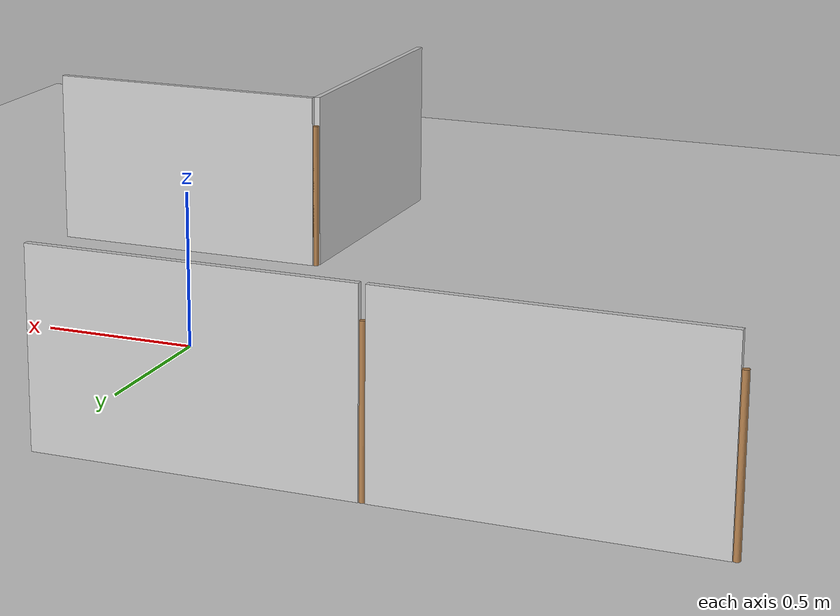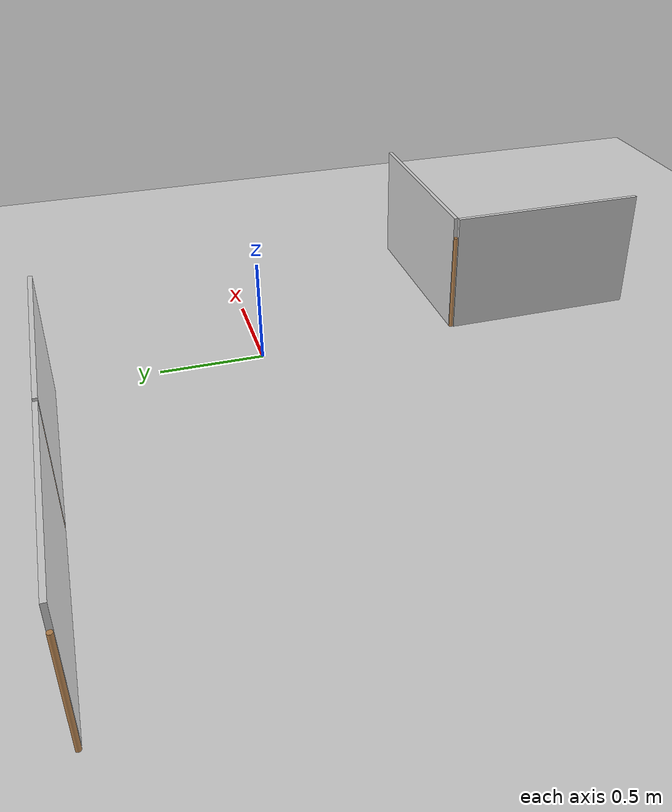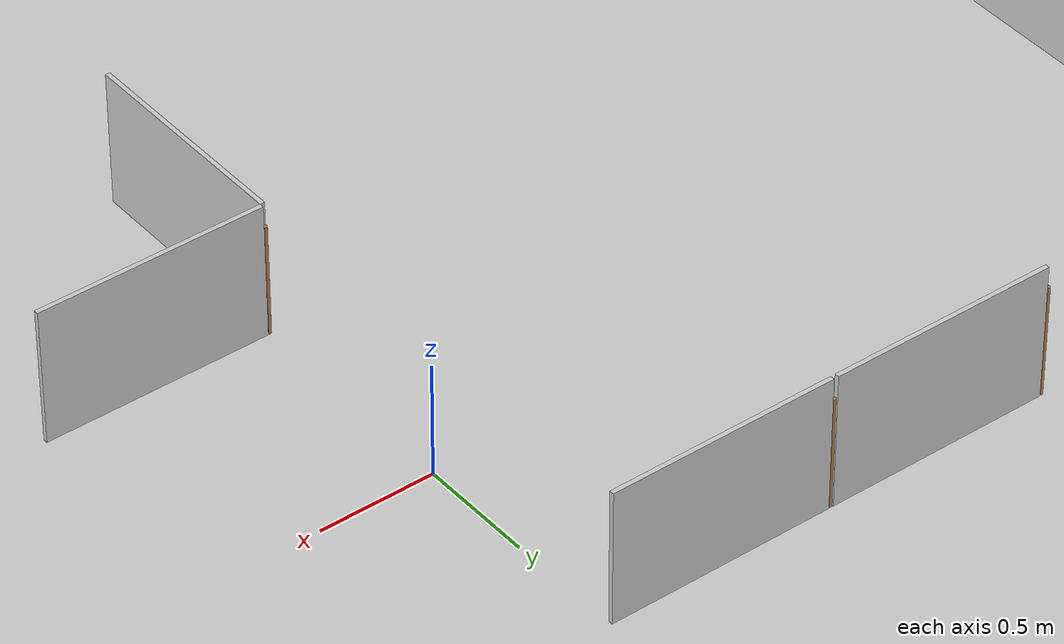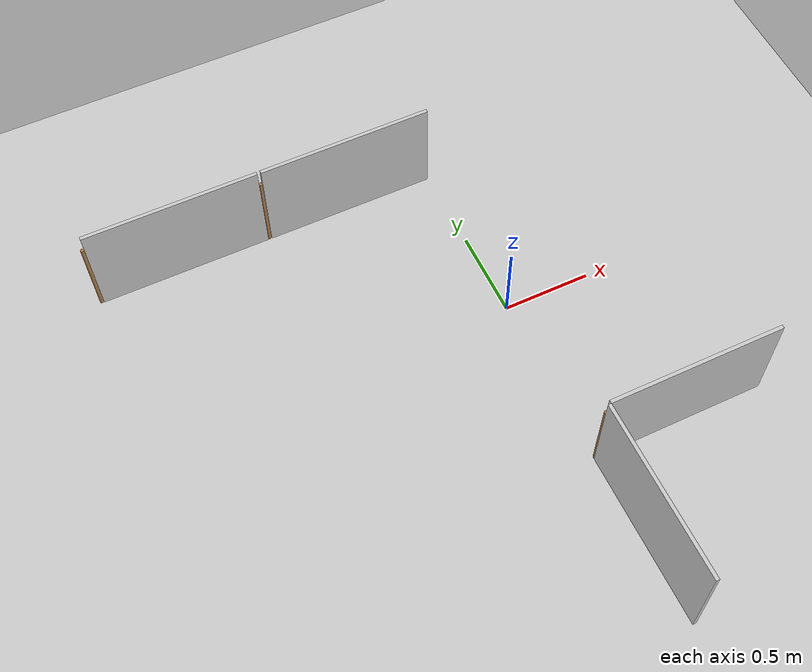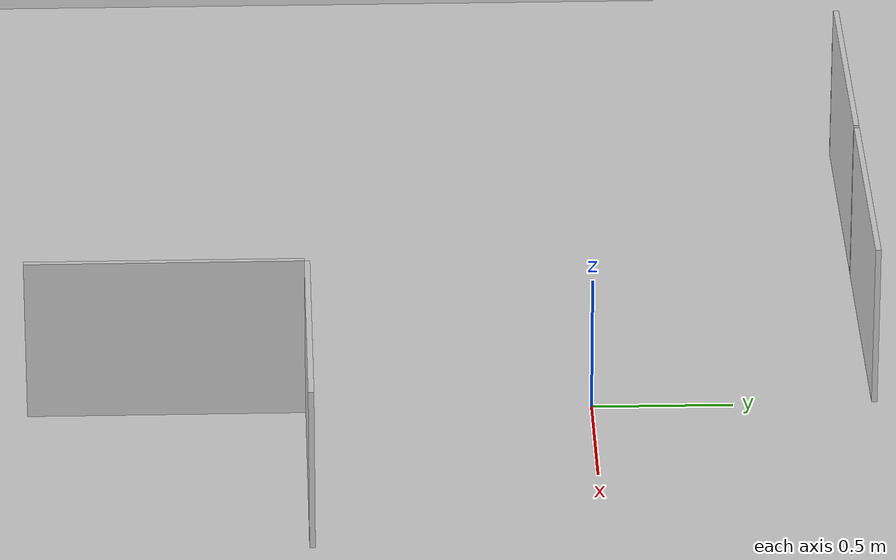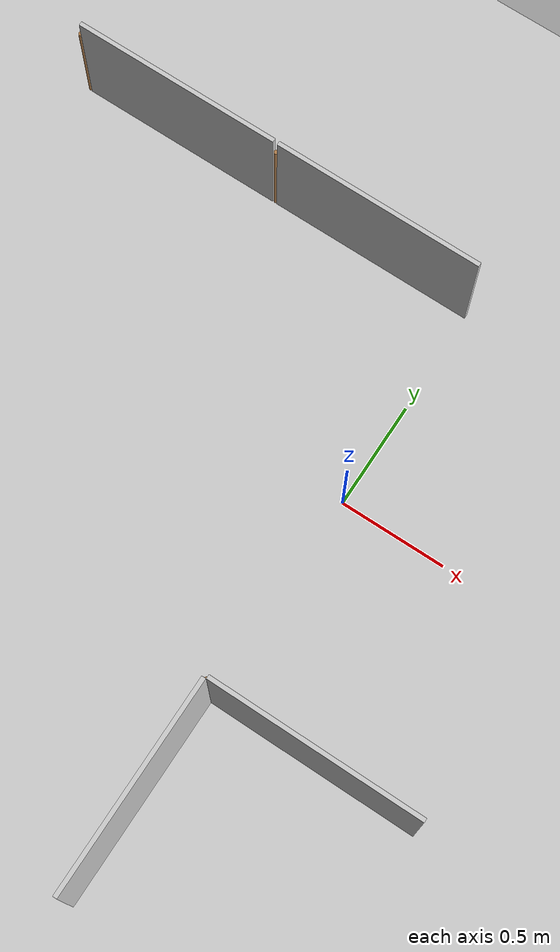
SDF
<sdf version="1.7">
 <world name="default">
  <model name="ground_plane">
   <static>true</static>
   <link name="link">
    <collision name="collision">
     <geometry><plane><normal>0 0 1</normal><size>1 1</size></plane></geometry>
    </collision>
    <visual name="visual">
     <geometry><plane><normal>0 0 1</normal><size>100 100</size></plane></geometry>
     <material>
      <ambient>0.8 0.8 0.8 1</ambient>
      <diffuse>0.8 0.8 0.8 1</diffuse>
      <specular>0.8 0.8 0.8 1</specular>
     </material>
    </visual>
    <inertial>
     <mass>1</mass>
     <inertia><ixx>1</ixx><ixy>0</ixy><ixz>0</ixz><iyy>1</iyy><iyz>0</iyz><izz>1</izz></inertia>
    </inertial>
   </link>
  </model>
  <model name="maze_1_6x5_clone_2_clone_clone_clone_6">
   <frame name="plywood_panel_0_0_b::__model__" attached_to="plywood_panel_0_0_b::main">
    <pose relative_to="__model__">0 0 0 0 -0 1.571</pose>
   </frame>
   <static>true</static>
   <link name="plywood_panel_0_0_b::main">
    <pose relative_to="plywood_panel_0_0_b::__model__">0 0 0 0 -0 0</pose>
    <collision name="collision">
     <pose>0 -0.5 0.3 -1.571 -0 -1.571</pose>
     <geometry><box><size>0.98 0.6 0.02</size></box></geometry>
    </collision>
    <visual name="visual">
     <pose>0.01 -0.01 0 3.14159 -1.57059 3.14159</pose>
     <geometry>
      <mesh>
       <scale>1 1 1</scale>
       <uri>/home/mayank/cognipilot/cranium/src/dream_world/models/plywood_panel/meshes/plywood.dae</uri>
      </mesh>
     </geometry>
    </visual>
   </link>
   <frame name="wooden_joint_0_0_b::__model__" attached_to="wooden_joint_0_0_b::link_0">
    <pose relative_to="__model__">0 0 0 0 -0 0</pose>
   </frame>
   <link name="wooden_joint_0_0_b::link_0">
    <pose relative_to="wooden_joint_0_0_b::__model__">0 0 0.25 0 -0 0</pose>
    <inertial>
     <mass>0.00215981</mass>
     <inertia>
      <ixx>0.00018028</ixx>
      <ixy>0</ixy>
      <ixz>0</ixz>
      <iyy>0.00018028</iyy>
      <iyz>0</iyz>
      <izz>5.8e-07</izz>
     </inertia>
    </inertial>
    <visual name="visual">
     <geometry><cylinder><radius>0.01</radius><length>0.5</length></cylinder></geometry>
     <material>
      <lighting>1</lighting>
      <script><uri>file://media/materials/scripts/gazebo.material</uri><name>Gazebo/Wood</name></script>
      <shader type="pixel"><normal_map>__default__</normal_map></shader>
      <ambient>0.3 0.3 0.3 1</ambient>
      <diffuse>0.7 0.7 0.7 1</diffuse>
      <specular>0.01 0.01 0.01 1</specular>
      <emissive>0 0 0 1</emissive>
     </material>
    </visual>
    <collision name="collision">
     <geometry><cylinder><radius>0.01</radius><length>0.5</length></cylinder></geometry>
     <surface>
      <friction>
       <ode><mu>1</mu><mu2>1</mu2><fdir1>0 0 0</fdir1><slip1>0</slip1><slip2>0</slip2></ode>
       <torsional>
        <coefficient>1</coefficient>
        <patch_radius>0</patch_radius>
        <surface_radius>0</surface_radius>
        <use_patch_radius>1</use_patch_radius>
        <ode><slip>0</slip></ode>
       </torsional>
      </friction>
      <bounce><restitution_coefficient>0</restitution_coefficient><threshold>1e+06</threshold></bounce>
      <contact>
       <collide_without_contact>0</collide_without_contact>
       <collide_without_contact_bitmask>1</collide_without_contact_bitmask>
       <collide_bitmask>1</collide_bitmask>
       <ode>
        <soft_cfm>0</soft_cfm>
        <soft_erp>0.2</soft_erp>
        <kp>1e+13</kp>
        <kd>1</kd>
        <max_vel>0.01</max_vel>
        <min_depth>0</min_depth>
       </ode>
       <bullet>
        <split_impulse>1</split_impulse>
        <split_impulse_penetration_threshold>-0.01</split_impulse_penetration_threshold>
        <soft_cfm>0</soft_cfm>
        <soft_erp>0.2</soft_erp>
        <kp>1e+13</kp>
        <kd>1</kd>
       </bullet>
      </contact>
     </surface>
    </collision>
   </link>
   <static>true</static>
   <pose>-1 1 0 0 0 -4e-06</pose>
  </model>
  <model name="maze_1_6x5_clone_2_clone_clone_clone_7">
   <frame name="plywood_panel_0_0_b::__model__" attached_to="plywood_panel_0_0_b::main">
    <pose relative_to="__model__">0 0 0 0 -0 1.571</pose>
   </frame>
   <static>true</static>
   <link name="plywood_panel_0_0_b::main">
    <pose relative_to="plywood_panel_0_0_b::__model__">0 0 0 0 -0 0</pose>
    <collision name="collision">
     <pose>0 -0.5 0.3 -1.571 -0 -1.571</pose>
     <geometry><box><size>0.98 0.6 0.02</size></box></geometry>
    </collision>
    <visual name="visual">
     <pose>0.01 -0.01 0 3.14159 -1.57059 3.14159</pose>
     <geometry>
      <mesh>
       <scale>1 1 1</scale>
       <uri>/home/mayank/cognipilot/cranium/src/dream_world/models/plywood_panel/meshes/plywood.dae</uri>
      </mesh>
     </geometry>
    </visual>
   </link>
   <frame name="wooden_joint_0_0_b::__model__" attached_to="wooden_joint_0_0_b::link_0">
    <pose relative_to="__model__">0 0 0 0 -0 0</pose>
   </frame>
   <link name="wooden_joint_0_0_b::link_0">
    <pose relative_to="wooden_joint_0_0_b::__model__">0 0 0.25 0 -0 0</pose>
    <inertial>
     <mass>0.00215981</mass>
     <inertia>
      <ixx>0.00018028</ixx>
      <ixy>0</ixy>
      <ixz>0</ixz>
      <iyy>0.00018028</iyy>
      <iyz>0</iyz>
      <izz>5.8e-07</izz>
     </inertia>
    </inertial>
    <visual name="visual">
     <geometry><cylinder><radius>0.01</radius><length>0.5</length></cylinder></geometry>
     <material>
      <lighting>1</lighting>
      <script><uri>file://media/materials/scripts/gazebo.material</uri><name>Gazebo/Wood</name></script>
      <shader type="pixel"><normal_map>__default__</normal_map></shader>
      <ambient>0.3 0.3 0.3 1</ambient>
      <diffuse>0.7 0.7 0.7 1</diffuse>
      <specular>0.01 0.01 0.01 1</specular>
      <emissive>0 0 0 1</emissive>
     </material>
    </visual>
    <collision name="collision">
     <geometry><cylinder><radius>0.01</radius><length>0.5</length></cylinder></geometry>
     <surface>
      <friction>
       <ode><mu>1</mu><mu2>1</mu2><fdir1>0 0 0</fdir1><slip1>0</slip1><slip2>0</slip2></ode>
       <torsional>
        <coefficient>1</coefficient>
        <patch_radius>0</patch_radius>
        <surface_radius>0</surface_radius>
        <use_patch_radius>1</use_patch_radius>
        <ode><slip>0</slip></ode>
       </torsional>
      </friction>
      <bounce><restitution_coefficient>0</restitution_coefficient><threshold>1e+06</threshold></bounce>
      <contact>
       <collide_without_contact>0</collide_without_contact>
       <collide_without_contact_bitmask>1</collide_without_contact_bitmask>
       <collide_bitmask>1</collide_bitmask>
       <ode>
        <soft_cfm>0</soft_cfm>
        <soft_erp>0.2</soft_erp>
        <kp>1e+13</kp>
        <kd>1</kd>
        <max_vel>0.01</max_vel>
        <min_depth>0</min_depth>
       </ode>
       <bullet>
        <split_impulse>1</split_impulse>
        <split_impulse_penetration_threshold>-0.01</split_impulse_penetration_threshold>
        <soft_cfm>0</soft_cfm>
        <soft_erp>0.2</soft_erp>
        <kp>1e+13</kp>
        <kd>1</kd>
       </bullet>
      </contact>
     </surface>
    </collision>
   </link>
   <static>true</static>
   <pose>0 -1 0 0 0 -4e-06</pose>
  </model>
  <model name="maze_1_6x5_clone_2_clone_clone_clone_2">
   <frame name="plywood_panel_0_0_b::__model__" attached_to="plywood_panel_0_0_b::main">
    <pose relative_to="__model__">0 0 0 0 -0 1.571</pose>
   </frame>
   <static>true</static>
   <link name="plywood_panel_0_0_b::main">
    <pose relative_to="plywood_panel_0_0_b::__model__">0 0 0 0 -0 0</pose>
    <collision name="collision">
     <pose>0 -0.5 0.3 -1.571 -0 -1.571</pose>
     <geometry><box><size>0.98 0.6 0.02</size></box></geometry>
    </collision>
    <visual name="visual">
     <pose>0.01 -0.01 0 3.14159 -1.57059 3.14159</pose>
     <geometry>
      <mesh>
       <scale>1 1 1</scale>
       <uri>/home/mayank/cognipilot/cranium/src/dream_world/models/plywood_panel/meshes/plywood.dae</uri>
      </mesh>
     </geometry>
    </visual>
   </link>
   <frame name="wooden_joint_0_0_b::__model__" attached_to="wooden_joint_0_0_b::link_0">
    <pose relative_to="__model__">0 0 0 0 -0 0</pose>
   </frame>
   <link name="wooden_joint_0_0_b::link_0">
    <pose relative_to="wooden_joint_0_0_b::__model__">0 0 0.25 0 -0 0</pose>
    <inertial>
     <mass>0.00215981</mass>
     <inertia>
      <ixx>0.00018028</ixx>
      <ixy>0</ixy>
      <ixz>0</ixz>
      <iyy>0.00018028</iyy>
      <iyz>0</iyz>
      <izz>5.8e-07</izz>
     </inertia>
    </inertial>
    <visual name="visual">
     <geometry><cylinder><radius>0.01</radius><length>0.5</length></cylinder></geometry>
     <material>
      <lighting>1</lighting>
      <script><uri>file://media/materials/scripts/gazebo.material</uri><name>Gazebo/Wood</name></script>
      <shader type="pixel"><normal_map>__default__</normal_map></shader>
      <ambient>0.3 0.3 0.3 1</ambient>
      <diffuse>0.7 0.7 0.7 1</diffuse>
      <specular>0.01 0.01 0.01 1</specular>
      <emissive>0 0 0 1</emissive>
     </material>
    </visual>
    <collision name="collision">
     <geometry><cylinder><radius>0.01</radius><length>0.5</length></cylinder></geometry>
     <surface>
      <friction>
       <ode><mu>1</mu><mu2>1</mu2><fdir1>0 0 0</fdir1><slip1>0</slip1><slip2>0</slip2></ode>
       <torsional>
        <coefficient>1</coefficient>
        <patch_radius>0</patch_radius>
        <surface_radius>0</surface_radius>
        <use_patch_radius>1</use_patch_radius>
        <ode><slip>0</slip></ode>
       </torsional>
      </friction>
      <bounce><restitution_coefficient>0</restitution_coefficient><threshold>1e+06</threshold></bounce>
      <contact>
       <collide_without_contact>0</collide_without_contact>
       <collide_without_contact_bitmask>1</collide_without_contact_bitmask>
       <collide_bitmask>1</collide_bitmask>
       <ode>
        <soft_cfm>0</soft_cfm>
        <soft_erp>0.2</soft_erp>
        <kp>1e+13</kp>
        <kd>1</kd>
        <max_vel>0.01</max_vel>
        <min_depth>0</min_depth>
       </ode>
       <bullet>
        <split_impulse>1</split_impulse>
        <split_impulse_penetration_threshold>-0.01</split_impulse_penetration_threshold>
        <soft_cfm>0</soft_cfm>
        <soft_erp>0.2</soft_erp>
        <kp>1e+13</kp>
        <kd>1</kd>
       </bullet>
      </contact>
     </surface>
    </collision>
   </link>
   <static>true</static>
   <pose>-2 1 0 0 0 -4e-06</pose>
  </model>
  <model name="maze_1_6x5_clone_clone_12">
   <frame name="plywood_panel_0_0_b::__model__" attached_to="plywood_panel_0_0_b::main">
    <pose relative_to="__model__">0 0 0 0 -0 1.571</pose>
   </frame>
   <static>true</static>
   <link name="plywood_panel_0_0_b::main">
    <pose relative_to="plywood_panel_0_0_b::__model__">0 0 0 0 -0 0</pose>
    <collision name="collision">
     <pose>0 -0.5 0.3 -1.571 -0 -1.571</pose>
     <geometry><box><size>0.98 0.6 0.02</size></box></geometry>
    </collision>
    <visual name="visual">
     <pose>0.01 -0.01 0 3.14159 -1.57059 3.14159</pose>
     <geometry>
      <mesh>
       <scale>1 1 1</scale>
       <uri>/home/mayank/cognipilot/cranium/src/dream_world/models/plywood_panel/meshes/plywood.dae</uri>
      </mesh>
     </geometry>
    </visual>
   </link>
   <frame name="wooden_joint_0_0_b::__model__" attached_to="wooden_joint_0_0_b::link_0">
    <pose relative_to="__model__">0 0 0 0 -0 0</pose>
   </frame>
   <link name="wooden_joint_0_0_b::link_0">
    <pose relative_to="wooden_joint_0_0_b::__model__">0 0 0.25 0 -0 0</pose>
    <inertial>
     <mass>0.00215981</mass>
     <inertia>
      <ixx>0.00018028</ixx>
      <ixy>0</ixy>
      <ixz>0</ixz>
      <iyy>0.00018028</iyy>
      <iyz>0</iyz>
      <izz>5.8e-07</izz>
     </inertia>
    </inertial>
    <visual name="visual">
     <geometry><cylinder><radius>0.01</radius><length>0.5</length></cylinder></geometry>
     <material>
      <lighting>1</lighting>
      <script><uri>file://media/materials/scripts/gazebo.material</uri><name>Gazebo/Wood</name></script>
      <shader type="pixel"><normal_map>__default__</normal_map></shader>
      <ambient>0.3 0.3 0.3 1</ambient>
      <diffuse>0.7 0.7 0.7 1</diffuse>
      <specular>0.01 0.01 0.01 1</specular>
      <emissive>0 0 0 1</emissive>
     </material>
    </visual>
    <collision name="collision">
     <geometry><cylinder><radius>0.01</radius><length>0.5</length></cylinder></geometry>
     <surface>
      <friction>
       <ode><mu>1</mu><mu2>1</mu2><fdir1>0 0 0</fdir1><slip1>0</slip1><slip2>0</slip2></ode>
       <torsional>
        <coefficient>1</coefficient>
        <patch_radius>0</patch_radius>
        <surface_radius>0</surface_radius>
        <use_patch_radius>1</use_patch_radius>
        <ode><slip>0</slip></ode>
       </torsional>
      </friction>
      <bounce><restitution_coefficient>0</restitution_coefficient><threshold>1e+06</threshold></bounce>
      <contact>
       <collide_without_contact>0</collide_without_contact>
       <collide_without_contact_bitmask>1</collide_without_contact_bitmask>
       <collide_bitmask>1</collide_bitmask>
       <ode>
        <soft_cfm>0</soft_cfm>
        <soft_erp>0.2</soft_erp>
        <kp>1e+13</kp>
        <kd>1</kd>
        <max_vel>0.01</max_vel>
        <min_depth>0</min_depth>
       </ode>
       <bullet>
        <split_impulse>1</split_impulse>
        <split_impulse_penetration_threshold>-0.01</split_impulse_penetration_threshold>
        <soft_cfm>0</soft_cfm>
        <soft_erp>0.2</soft_erp>
        <kp>1e+13</kp>
        <kd>1</kd>
       </bullet>
      </contact>
     </surface>
    </collision>
   </link>
   <static>true</static>
   <pose>0 -1 0 0 0 -1.5708</pose>
  </model>
 </world>
</sdf>
